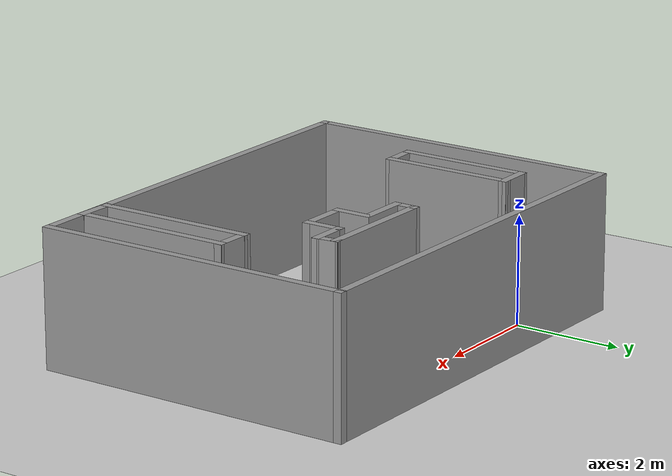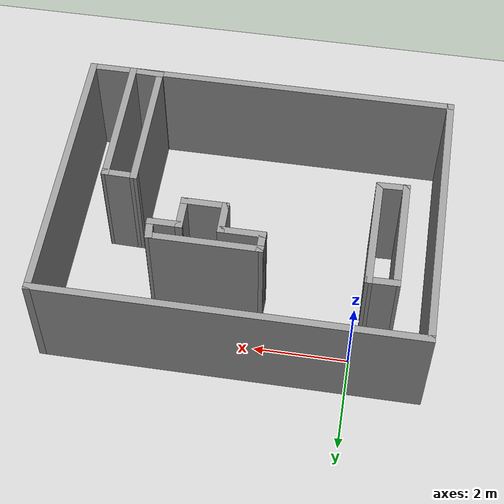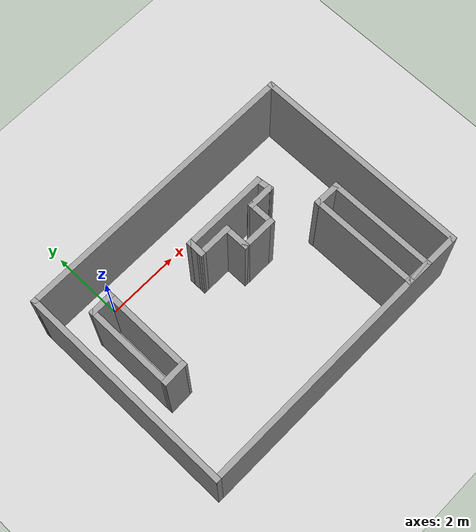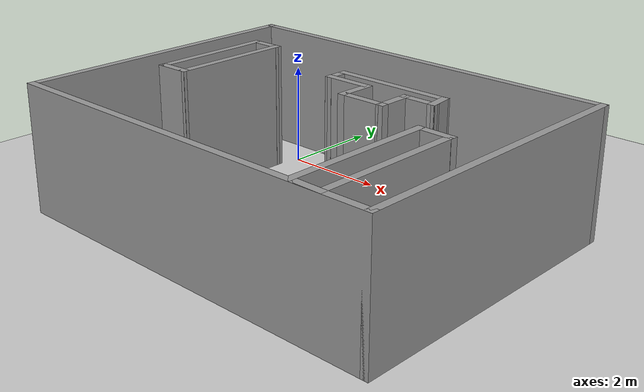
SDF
<sdf version="1.6">
 <world name="default">
  <light name="sun" type="directional">
   <pose>0 0 10 0 -0 0</pose>
   <diffuse>0.8 0.8 0.8 1</diffuse>
   <specular>0.2 0.2 0.2 1</specular>
   <attenuation>
    <range>1000</range>
    <constant>0.9</constant>
    <linear>0.01</linear>
    <quadratic>0.001</quadratic>
   </attenuation>
   <direction>-0.5 0.1 -0.9</direction>
  </light>
  <model name="ground_plane">
   <static>1</static>
   <link name="link">
    <collision name="collision">
     <geometry><plane><normal>0 0 1</normal><size>100 100</size></plane></geometry>
     <surface>
      <contact><collide_bitmask>65535</collide_bitmask></contact>
      <friction><ode><mu>100</mu><mu2>50</mu2></ode></friction>
     </surface>
    </collision>
    <visual name="visual">
     <cast_shadows>0</cast_shadows>
     <geometry><plane><normal>0 0 1</normal><size>100 100</size></plane></geometry>
     <material>
      <script><uri>file://media/materials/scripts/gazebo.material</uri><name>Gazebo/Grey</name></script>
     </material>
    </visual>
   </link>
  </model>
  <gravity>0 0 -9.8</gravity>
  <magnetic_field>6e-06 2.3e-05 -4.2e-05</magnetic_field>
  <atmosphere type="adiabatic"/>
  <physics name="default_physics" default="0" type="ode">
   <max_step_size>0.001</max_step_size>
   <real_time_factor>1</real_time_factor>
   <real_time_update_rate>1000</real_time_update_rate>
  </physics>
  <scene><ambient>0.4 0.4 0.4 1</ambient><background>0.7 0.7 0.7 1</background><shadows>1</shadows></scene>
  <audio><device>default</device></audio>
  <spherical_coordinates>
   <surface_model>EARTH_WGS84</surface_model>
   <latitude_deg>0</latitude_deg>
   <longitude_deg>0</longitude_deg>
   <elevation>0</elevation>
   <heading_deg>0</heading_deg>
  </spherical_coordinates>
  <model name="room1">
   <pose>2.42721 -2.21998 0 0 -0 0</pose>
   <link name="Wall_0">
    <collision name="Wall_0_Collision">
     <geometry><box><size>8 0.15 2.5</size></box></geometry>
     <pose>0 0 1.25 0 -0 0</pose>
    </collision>
    <visual name="Wall_0_Visual">
     <pose>0 0 1.25 0 -0 0</pose>
     <geometry><box><size>8 0.15 2.5</size></box></geometry>
     <material>
      <script><uri>file://media/materials/scripts/gazebo.material</uri><name>Gazebo/Grey</name></script>
      <ambient>1 1 1 1</ambient>
     </material>
     <meta><layer>0</layer></meta>
    </visual>
    <pose>0 2.925 0 0 -0 3.14159</pose>
   </link>
   <link name="Wall_1">
    <collision name="Wall_1_Collision">
     <geometry><box><size>0.15 0.15 2.5</size></box></geometry>
     <pose>0 0 1.25 0 -0 0</pose>
    </collision>
    <visual name="Wall_1_Visual">
     <pose>0 0 1.25 0 -0 0</pose>
     <geometry><box><size>0.15 0.15 2.5</size></box></geometry>
     <material>
      <script><uri>file://media/materials/scripts/gazebo.material</uri><name>Gazebo/Grey</name></script>
      <ambient>1 1 1 1</ambient>
     </material>
     <meta><layer>0</layer></meta>
    </visual>
    <pose>-3.925 2.925 0 0 -0 0</pose>
   </link>
   <link name="Wall_10">
    <collision name="Wall_10_Collision">
     <geometry><box><size>0.7 0.15 2.5</size></box></geometry>
     <pose>0 0 1.25 0 -0 0</pose>
    </collision>
    <visual name="Wall_10_Visual">
     <pose>0 0 1.25 0 -0 0</pose>
     <geometry><box><size>0.7 0.15 2.5</size></box></geometry>
     <material>
      <script><uri>file://media/materials/scripts/gazebo.material</uri><name>Gazebo/Grey</name></script>
      <ambient>1 1 1 1</ambient>
     </material>
     <meta><layer>0</layer></meta>
    </visual>
    <pose>-2.8965 -0.577585 0 0 -0 0.030729</pose>
   </link>
   <link name="Wall_11">
    <collision name="Wall_11_Collision">
     <geometry><box><size>2.5 0.15 2.5</size></box></geometry>
     <pose>0 0 1.25 0 -0 0</pose>
    </collision>
    <visual name="Wall_11_Visual">
     <pose>0 0 1.25 0 -0 0</pose>
     <geometry><box><size>2.5 0.15 2.5</size></box></geometry>
     <material>
      <script><uri>file://media/materials/scripts/gazebo.material</uri><name>Gazebo/Grey</name></script>
      <ambient>1 1 1 1</ambient>
     </material>
     <meta><layer>0</layer></meta>
    </visual>
    <pose>-2.6215 0.605869 0 0 -0 1.5708</pose>
   </link>
   <link name="Wall_12">
    <collision name="Wall_12_Collision">
     <geometry><box><size>0.700077 0.15 2.5</size></box></geometry>
     <pose>0 0 1.25 0 -0 0</pose>
    </collision>
    <visual name="Wall_12_Visual">
     <pose>0 0 1.25 0 -0 0</pose>
     <geometry><box><size>0.700077 0.15 2.5</size></box></geometry>
     <material>
      <script><uri>file://media/materials/scripts/gazebo.material</uri><name>Gazebo/Grey</name></script>
      <ambient>1 1 1 1</ambient>
     </material>
     <meta><layer>0</layer></meta>
    </visual>
    <pose>-2.8965 1.77618 0 0 -0 -3.12453</pose>
   </link>
   <link name="Wall_13">
    <collision name="Wall_13_Collision">
     <geometry><box><size>2.5 0.15 2.5</size></box></geometry>
     <pose>0 0 1.25 0 -0 0</pose>
    </collision>
    <visual name="Wall_13_Visual">
     <pose>0 0 1.25 0 -0 0</pose>
     <geometry><box><size>2.5 0.15 2.5</size></box></geometry>
     <material>
      <script><uri>file://media/materials/scripts/gazebo.material</uri><name>Gazebo/Grey</name></script>
      <ambient>1 1 1 1</ambient>
     </material>
     <meta><layer>0</layer></meta>
    </visual>
    <pose>-3.1715 0.596481 0 0 -0 -1.5708</pose>
   </link>
   <link name="Wall_16">
    <collision name="Wall_16_Collision">
     <geometry><box><size>0.763591 0.15 2.5</size></box></geometry>
     <pose>0 0 1.25 0 -0 0</pose>
    </collision>
    <visual name="Wall_16_Visual">
     <pose>0 0 1.25 0 -0 0</pose>
     <geometry><box><size>0.763591 0.15 2.5</size></box></geometry>
     <material>
      <script><uri>file://media/materials/scripts/gazebo.material</uri><name>Gazebo/Grey</name></script>
      <ambient>1 1 1 1</ambient>
     </material>
     <meta><layer>0</layer></meta>
    </visual>
    <pose>2.72704 -0.058379 0 0 -0 3.1203</pose>
   </link>
   <link name="Wall_17">
    <collision name="Wall_17_Collision">
     <geometry><box><size>3.00262 0.15 2.5</size></box></geometry>
     <pose>0 0 1.25 0 -0 0</pose>
    </collision>
    <visual name="Wall_17_Visual">
     <pose>0 0 1.25 0 -0 0</pose>
     <geometry><box><size>3.00262 0.15 2.5</size></box></geometry>
     <material>
      <script><uri>file://media/materials/scripts/gazebo.material</uri><name>Gazebo/Grey</name></script>
      <ambient>1 1 1 1</ambient>
     </material>
     <meta><layer>0</layer></meta>
    </visual>
    <pose>2.43065 -1.47816 0 0 -0 -1.56813</pose>
   </link>
   <link name="Wall_18">
    <collision name="Wall_18_Collision">
     <geometry><box><size>0.756945 0.15 2.5</size></box></geometry>
     <pose>0 0 1.25 0 -0 0</pose>
    </collision>
    <visual name="Wall_18_Visual">
     <pose>0 0 1.25 0 -0 0</pose>
     <geometry><box><size>0.756945 0.15 2.5</size></box></geometry>
     <material>
      <script><uri>file://media/materials/scripts/gazebo.material</uri><name>Gazebo/Grey</name></script>
      <ambient>1 1 1 1</ambient>
     </material>
     <meta><layer>0</layer></meta>
    </visual>
    <pose>2.73129 -2.91267 0 0 -0 -0.027057</pose>
   </link>
   <link name="Wall_19">
    <collision name="Wall_19_Collision">
     <geometry><box><size>3.0088 0.15 2.5</size></box></geometry>
     <pose>0 0 1.25 0 -0 0</pose>
    </collision>
    <visual name="Wall_19_Visual">
     <pose>0 0 1.25 0 -0 0</pose>
     <geometry><box><size>3.0088 0.15 2.5</size></box></geometry>
     <material>
      <script><uri>file://media/materials/scripts/gazebo.material</uri><name>Gazebo/Grey</name></script>
      <ambient>1 1 1 1</ambient>
     </material>
     <meta><layer>0</layer></meta>
    </visual>
    <pose>3.03093 -1.49431 0 0 -0 1.57339</pose>
   </link>
   <link name="Wall_2">
    <collision name="Wall_2_Collision">
     <geometry><box><size>6 0.15 2.5</size></box></geometry>
     <pose>0 0 1.25 0 -0 0</pose>
    </collision>
    <visual name="Wall_2_Visual">
     <pose>0 0 1.25 0 -0 0</pose>
     <geometry><box><size>6 0.15 2.5</size></box></geometry>
     <material>
      <script><uri>file://media/materials/scripts/gazebo.material</uri><name>Gazebo/Grey</name></script>
      <ambient>1 1 1 1</ambient>
     </material>
     <meta><layer>0</layer></meta>
    </visual>
    <pose>-3.925 0 0 0 -0 -1.5708</pose>
   </link>
   <link name="Wall_21">
    <collision name="Wall_21_Collision">
     <geometry><box><size>2.4 0.15 2.5</size></box></geometry>
     <pose>0 0 1.25 0 -0 0</pose>
    </collision>
    <visual name="Wall_21_Visual">
     <pose>0 0 1.25 0 -0 0</pose>
     <geometry><box><size>2.4 0.15 2.5</size></box></geometry>
     <material>
      <script><uri>file://media/materials/scripts/gazebo.material</uri><name>Gazebo/Grey</name></script>
      <ambient>1 1 1 1</ambient>
     </material>
     <meta><layer>0</layer></meta>
    </visual>
    <pose>0.702327 1.37528 0 0 -0 3.14159</pose>
   </link>
   <link name="Wall_22">
    <collision name="Wall_22_Collision">
     <geometry><box><size>0.50069 0.15 2.5</size></box></geometry>
     <pose>0 0 1.25 0 -0 0</pose>
    </collision>
    <visual name="Wall_22_Visual">
     <pose>0 0 1.25 0 -0 0</pose>
     <geometry><box><size>0.50069 0.15 2.5</size></box></geometry>
     <material>
      <script><uri>file://media/materials/scripts/gazebo.material</uri><name>Gazebo/Grey</name></script>
      <ambient>1 1 1 1</ambient>
     </material>
     <meta><layer>0</layer></meta>
    </visual>
    <pose>-0.422289 1.20028 0 0 -0 -1.58718</pose>
   </link>
   <link name="Wall_23">
    <collision name="Wall_23_Collision">
     <geometry><box><size>1 0.15 2.5</size></box></geometry>
     <pose>0 0 1.25 0 -0 0</pose>
    </collision>
    <visual name="Wall_23_Visual">
     <pose>0 0 1.25 0 -0 0</pose>
     <geometry><box><size>1 0.15 2.5</size></box></geometry>
     <material>
      <script><uri>file://media/materials/scripts/gazebo.material</uri><name>Gazebo/Grey</name></script>
      <ambient>1 1 1 1</ambient>
     </material>
     <meta><layer>0</layer></meta>
    </visual>
    <pose>-0.000156 1.02528 0 0 -0 0</pose>
   </link>
   <link name="Wall_24">
    <collision name="Wall_24_Collision">
     <geometry><box><size>0.75 0.15 2.5</size></box></geometry>
     <pose>0 0 1.25 0 -0 0</pose>
    </collision>
    <visual name="Wall_24_Visual">
     <pose>0 0 1.25 0 -0 0</pose>
     <geometry><box><size>0.75 0.15 2.5</size></box></geometry>
     <material>
      <script><uri>file://media/materials/scripts/gazebo.material</uri><name>Gazebo/Grey</name></script>
      <ambient>1 1 1 1</ambient>
     </material>
     <meta><layer>0</layer></meta>
    </visual>
    <pose>0.424844 0.725278 0 0 -0 -1.5708</pose>
   </link>
   <link name="Wall_25">
    <collision name="Wall_25_Collision">
     <geometry><box><size>1 0.15 2.5</size></box></geometry>
     <pose>0 0 1.25 0 -0 0</pose>
    </collision>
    <visual name="Wall_25_Visual">
     <pose>0 0 1.25 0 -0 0</pose>
     <geometry><box><size>1 0.15 2.5</size></box></geometry>
     <material>
      <script><uri>file://media/materials/scripts/gazebo.material</uri><name>Gazebo/Grey</name></script>
      <ambient>1 1 1 1</ambient>
     </material>
     <meta><layer>0</layer></meta>
    </visual>
    <pose>0.849844 0.425278 0 0 -0 0</pose>
   </link>
   <link name="Wall_3">
    <collision name="Wall_3_Collision">
     <geometry><box><size>8 0.15 2.5</size></box></geometry>
     <pose>0 0 1.25 0 -0 0</pose>
    </collision>
    <visual name="Wall_3_Visual">
     <pose>0 0 1.25 0 -0 0</pose>
     <geometry><box><size>8 0.15 2.5</size></box></geometry>
     <material>
      <script><uri>file://media/materials/scripts/gazebo.material</uri><name>Gazebo/Grey</name></script>
      <ambient>1 1 1 1</ambient>
     </material>
     <meta><layer>0</layer></meta>
    </visual>
    <pose>0 -2.925 0 0 -0 0</pose>
   </link>
   <link name="Wall_32">
    <collision name="Wall_32_Collision">
     <geometry><box><size>0.756501 0.15 2.5</size></box></geometry>
     <pose>0 0 1.25 0 -0 0</pose>
    </collision>
    <visual name="Wall_32_Visual">
     <pose>0 0 1.25 0 -0 0</pose>
     <geometry><box><size>0.756501 0.15 2.5</size></box></geometry>
     <material>
      <script><uri>file://media/materials/scripts/gazebo.material</uri><name>Gazebo/Grey</name></script>
      <ambient>1 1 1 1</ambient>
     </material>
     <meta><layer>0</layer></meta>
    </visual>
    <pose>1.27484 0.728528 0 0 -0 1.5708</pose>
   </link>
   <link name="Wall_33">
    <collision name="Wall_33_Collision">
     <geometry><box><size>0.743508 0.15 2.5</size></box></geometry>
     <pose>0 0 1.25 0 -0 0</pose>
    </collision>
    <visual name="Wall_33_Visual">
     <pose>0 0 1.25 0 -0 0</pose>
     <geometry><box><size>0.743508 0.15 2.5</size></box></geometry>
     <material>
      <script><uri>file://media/materials/scripts/gazebo.material</uri><name>Gazebo/Grey</name></script>
      <ambient>1 1 1 1</ambient>
     </material>
     <meta><layer>0</layer></meta>
    </visual>
    <pose>1.57159 1.03015 0 0 -0 0.005477</pose>
   </link>
   <link name="Wall_34">
    <collision name="Wall_34_Collision">
     <geometry><box><size>0.496339 0.15 2.5</size></box></geometry>
     <pose>0 0 1.25 0 -0 0</pose>
    </collision>
    <visual name="Wall_34_Visual">
     <pose>0 0 1.25 0 -0 0</pose>
     <geometry><box><size>0.496339 0.15 2.5</size></box></geometry>
     <material>
      <script><uri>file://media/materials/scripts/gazebo.material</uri><name>Gazebo/Grey</name></script>
      <ambient>1 1 1 1</ambient>
     </material>
     <meta><layer>0</layer></meta>
    </visual>
    <pose>1.85109 1.20353 0 0 -0 1.68964</pose>
   </link>
   <link name="Wall_4">
    <collision name="Wall_4_Collision">
     <geometry><box><size>6 0.15 2.5</size></box></geometry>
     <pose>0 0 1.25 0 -0 0</pose>
    </collision>
    <visual name="Wall_4_Visual">
     <pose>0 0 1.25 0 -0 0</pose>
     <geometry><box><size>6 0.15 2.5</size></box></geometry>
     <material>
      <script><uri>file://media/materials/scripts/gazebo.material</uri><name>Gazebo/Grey</name></script>
      <ambient>1 1 1 1</ambient>
     </material>
     <meta><layer>0</layer></meta>
    </visual>
    <pose>3.925 0 0 0 -0 1.5708</pose>
   </link>
   <static>1</static>
  </model>
 </world>
</sdf>
